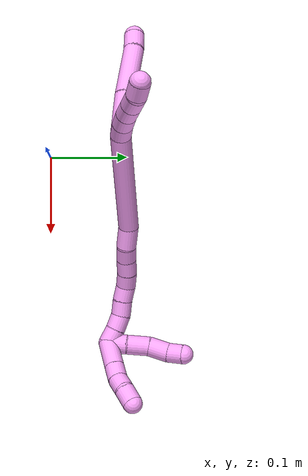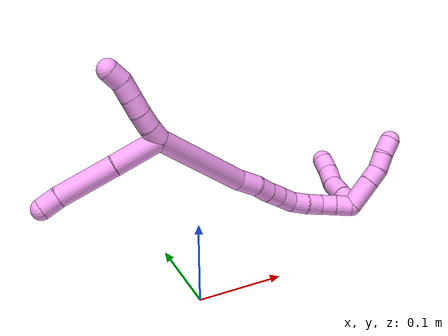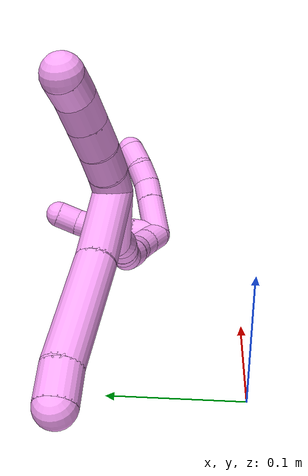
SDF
<sdf version="1.7">
 <world name="default">
  <model name="4">
   <static>0</static>
   <link name="4">
    <collision name="collision-cylinder-e_1_2_8">
     <pose>-0.028395 0.001263 -0.002235 -2.6273 -1.48064 2.58111</pose>
     <geometry><cylinder><radius>0.0125</radius><length>0.057022</length></cylinder></geometry>
     <surface>
      <friction><ode><mu>1.16</mu><mu2>1.16</mu2><slip1>0</slip1><slip2>0</slip2></ode></friction>
      <contact><ode><kp>1e+06</kp><kd>1</kd><max_vel>0</max_vel><min_depth>0.001</min_depth></ode></contact>
     </surface>
    </collision>
    <visual name="visual-cylinder-e_1_2_8">
     <pose>-0.028395 0.001263 -0.002235 -2.6273 -1.48064 2.58111</pose>
     <geometry><cylinder><radius>0.0125</radius><length>0.057022</length></cylinder></geometry>
     <material><ambient>1 0.65098 0.996078 1</ambient></material>
    </visual>
    <collision name="collision-cylinder-e_2_8_9">
     <pose>-0.091507 0.006401 -0.008183 -2.33484 -1.41741 2.21777</pose>
     <geometry><cylinder><radius>0.0125</radius><length>0.070258</length></cylinder></geometry>
     <surface>
      <friction><ode><mu>1.16</mu><mu2>1.16</mu2><slip1>0</slip1><slip2>0</slip2></ode></friction>
      <contact><ode><kp>1e+06</kp><kd>1</kd><max_vel>0</max_vel><min_depth>0.001</min_depth></ode></contact>
     </surface>
    </collision>
    <visual name="visual-cylinder-e_2_8_9">
     <pose>-0.091507 0.006401 -0.008183 -2.33484 -1.41741 2.21777</pose>
     <geometry><cylinder><radius>0.0125</radius><length>0.070258</length></cylinder></geometry>
     <material><ambient>1 0.65098 0.996078 1</ambient></material>
    </visual>
    <collision name="collision-cylinder-e_3_9_6">
     <pose>-0.137427 0.010239 -0.013779 3.12155 -1.40429 -3.11791</pose>
     <geometry><cylinder><radius>0.0125</radius><length>0.02272</length></cylinder></geometry>
     <surface>
      <friction><ode><mu>1.16</mu><mu2>1.16</mu2><slip1>0</slip1><slip2>0</slip2></ode></friction>
      <contact><ode><kp>1e+06</kp><kd>1</kd><max_vel>0</max_vel><min_depth>0.001</min_depth></ode></contact>
     </surface>
    </collision>
    <visual name="visual-cylinder-e_3_9_6">
     <pose>-0.137427 0.010239 -0.013779 3.12155 -1.40429 -3.11791</pose>
     <geometry><cylinder><radius>0.0125</radius><length>0.02272</length></cylinder></geometry>
     <material><ambient>1 0.65098 0.996078 1</ambient></material>
    </visual>
    <collision name="collision-cylinder-e_1_2_10">
     <pose>-0.00223 0.000157 0.009747 -0.016084 -0.224896 0.001816</pose>
     <geometry><cylinder><radius>0.0125</radius><length>0.02</length></cylinder></geometry>
     <surface>
      <friction><ode><mu>1.16</mu><mu2>1.16</mu2><slip1>0</slip1><slip2>0</slip2></ode></friction>
      <contact><ode><kp>1e+06</kp><kd>1</kd><max_vel>0</max_vel><min_depth>0.001</min_depth></ode></contact>
     </surface>
    </collision>
    <visual name="visual-cylinder-e_1_2_10">
     <pose>-0.00223 0.000157 0.009747 -0.016084 -0.224896 0.001816</pose>
     <geometry><cylinder><radius>0.0125</radius><length>0.02</length></cylinder></geometry>
     <material><ambient>1 0.65098 0.996078 1</ambient></material>
    </visual>
    <collision name="collision-cylinder-e_2_10_11">
     <pose>-0.005872 0.00135 0.029339 -0.104907 -0.141695 0.007452</pose>
     <geometry><cylinder><radius>0.0125</radius><length>0.02</length></cylinder></geometry>
     <surface>
      <friction><ode><mu>1.16</mu><mu2>1.16</mu2><slip1>0</slip1><slip2>0</slip2></ode></friction>
      <contact><ode><kp>1e+06</kp><kd>1</kd><max_vel>0</max_vel><min_depth>0.001</min_depth></ode></contact>
     </surface>
    </collision>
    <visual name="visual-cylinder-e_2_10_11">
     <pose>-0.005872 0.00135 0.029339 -0.104907 -0.141695 0.007452</pose>
     <geometry><cylinder><radius>0.0125</radius><length>0.02</length></cylinder></geometry>
     <material><ambient>1 0.65098 0.996078 1</ambient></material>
    </visual>
    <collision name="collision-cylinder-e_3_11_12">
     <pose>-0.008098 0.004113 0.049001 -0.174038 -0.081389 0.007104</pose>
     <geometry><cylinder><radius>0.0125</radius><length>0.02</length></cylinder></geometry>
     <surface>
      <friction><ode><mu>1.16</mu><mu2>1.16</mu2><slip1>0</slip1><slip2>0</slip2></ode></friction>
      <contact><ode><kp>1e+06</kp><kd>1</kd><max_vel>0</max_vel><min_depth>0.001</min_depth></ode></contact>
     </surface>
    </collision>
    <visual name="visual-cylinder-e_3_11_12">
     <pose>-0.008098 0.004113 0.049001 -0.174038 -0.081389 0.007104</pose>
     <geometry><cylinder><radius>0.0125</radius><length>0.02</length></cylinder></geometry>
     <material><ambient>1 0.65098 0.996078 1</ambient></material>
    </visual>
    <collision name="collision-cylinder-e_4_12_13">
     <pose>-0.009709 0.007609 0.068627 -0.178554 -0.079949 0.00716</pose>
     <geometry><cylinder><radius>0.0125</radius><length>0.02</length></cylinder></geometry>
     <surface>
      <friction><ode><mu>1.16</mu><mu2>1.16</mu2><slip1>0</slip1><slip2>0</slip2></ode></friction>
      <contact><ode><kp>1e+06</kp><kd>1</kd><max_vel>0</max_vel><min_depth>0.001</min_depth></ode></contact>
     </surface>
    </collision>
    <visual name="visual-cylinder-e_4_12_13">
     <pose>-0.009709 0.007609 0.068627 -0.178554 -0.079949 0.00716</pose>
     <geometry><cylinder><radius>0.0125</radius><length>0.02</length></cylinder></geometry>
     <material><ambient>1 0.65098 0.996078 1</ambient></material>
    </visual>
    <collision name="collision-cylinder-e_5_13_5">
     <pose>-0.014377 0.010329 0.087608 -0.103206 -0.397273 0.020792</pose>
     <geometry><cylinder><radius>0.0125</radius><length>0.02</length></cylinder></geometry>
     <surface>
      <friction><ode><mu>1.16</mu><mu2>1.16</mu2><slip1>0</slip1><slip2>0</slip2></ode></friction>
      <contact><ode><kp>1e+06</kp><kd>1</kd><max_vel>0</max_vel><min_depth>0.001</min_depth></ode></contact>
     </surface>
    </collision>
    <visual name="visual-cylinder-e_5_13_5">
     <pose>-0.014377 0.010329 0.087608 -0.103206 -0.397273 0.020792</pose>
     <geometry><cylinder><radius>0.0125</radius><length>0.02</length></cylinder></geometry>
     <material><ambient>1 0.65098 0.996078 1</ambient></material>
    </visual>
    <collision name="collision-cylinder-e_1_2_14">
     <pose>0.034204 0.012013 -0.054894 -2.92615 0.546792 -2.40548</pose>
     <geometry><cylinder><radius>0.0125</radius><length>0.131568</length></cylinder></geometry>
     <surface>
      <friction><ode><mu>1.16</mu><mu2>1.16</mu2><slip1>0</slip1><slip2>0</slip2></ode></friction>
      <contact><ode><kp>1e+06</kp><kd>1</kd><max_vel>0</max_vel><min_depth>0.001</min_depth></ode></contact>
     </surface>
    </collision>
    <visual name="visual-cylinder-e_1_2_14">
     <pose>0.034204 0.012013 -0.054894 -2.92615 0.546792 -2.40548</pose>
     <geometry><cylinder><radius>0.0125</radius><length>0.131568</length></cylinder></geometry>
     <material><ambient>1 0.65098 0.996078 1</ambient></material>
    </visual>
    <collision name="collision-cylinder-e_2_14_15">
     <pose>0.077721 0.024134 -0.120109 -3.13108 0.733954 -3.11424</pose>
     <geometry><cylinder><radius>0.0125</radius><length>0.027804</length></cylinder></geometry>
     <surface>
      <friction><ode><mu>1.16</mu><mu2>1.16</mu2><slip1>0</slip1><slip2>0</slip2></ode></friction>
      <contact><ode><kp>1e+06</kp><kd>1</kd><max_vel>0</max_vel><min_depth>0.001</min_depth></ode></contact>
     </surface>
    </collision>
    <visual name="visual-cylinder-e_2_14_15">
     <pose>0.077721 0.024134 -0.120109 -3.13108 0.733954 -3.11424</pose>
     <geometry><cylinder><radius>0.0125</radius><length>0.027804</length></cylinder></geometry>
     <material><ambient>1 0.65098 0.996078 1</ambient></material>
    </visual>
    <collision name="collision-cylinder-e_3_15_16">
     <pose>0.092242 0.025347 -0.139001 -3.01342 0.542571 -2.6881</pose>
     <geometry><cylinder><radius>0.0125</radius><length>0.020179</length></cylinder></geometry>
     <surface>
      <friction><ode><mu>1.16</mu><mu2>1.16</mu2><slip1>0</slip1><slip2>0</slip2></ode></friction>
      <contact><ode><kp>1e+06</kp><kd>1</kd><max_vel>0</max_vel><min_depth>0.001</min_depth></ode></contact>
     </surface>
    </collision>
    <visual name="visual-cylinder-e_3_15_16">
     <pose>0.092242 0.025347 -0.139001 -3.01342 0.542571 -2.6881</pose>
     <geometry><cylinder><radius>0.0125</radius><length>0.020179</length></cylinder></geometry>
     <material><ambient>1 0.65098 0.996078 1</ambient></material>
    </visual>
    <collision name="collision-cylinder-e_4_16_17">
     <pose>0.103465 0.028104 -0.155661 -2.94006 0.629476 -2.53933</pose>
     <geometry><cylinder><radius>0.0125</radius><length>0.02043</length></cylinder></geometry>
     <surface>
      <friction><ode><mu>1.16</mu><mu2>1.16</mu2><slip1>0</slip1><slip2>0</slip2></ode></friction>
      <contact><ode><kp>1e+06</kp><kd>1</kd><max_vel>0</max_vel><min_depth>0.001</min_depth></ode></contact>
     </surface>
    </collision>
    <visual name="visual-cylinder-e_4_16_17">
     <pose>0.103465 0.028104 -0.155661 -2.94006 0.629476 -2.53933</pose>
     <geometry><cylinder><radius>0.0125</radius><length>0.02043</length></cylinder></geometry>
     <material><ambient>1 0.65098 0.996078 1</ambient></material>
    </visual>
    <collision name="collision-cylinder-e_5_17_18">
     <pose>0.115404 0.030132 -0.171801 -3.09501 0.633923 -2.9998</pose>
     <geometry><cylinder><radius>0.0125</radius><length>0.020005</length></cylinder></geometry>
     <surface>
      <friction><ode><mu>1.16</mu><mu2>1.16</mu2><slip1>0</slip1><slip2>0</slip2></ode></friction>
      <contact><ode><kp>1e+06</kp><kd>1</kd><max_vel>0</max_vel><min_depth>0.001</min_depth></ode></contact>
     </surface>
    </collision>
    <visual name="visual-cylinder-e_5_17_18">
     <pose>0.115404 0.030132 -0.171801 -3.09501 0.633923 -2.9998</pose>
     <geometry><cylinder><radius>0.0125</radius><length>0.020005</length></cylinder></geometry>
     <material><ambient>1 0.65098 0.996078 1</ambient></material>
    </visual>
    <collision name="collision-cylinder-e_6_18_19">
     <pose>0.129311 0.029335 -0.185765 2.94594 0.923994 2.7524</pose>
     <geometry><cylinder><radius>0.0125</radius><length>0.020007</length></cylinder></geometry>
     <surface>
      <friction><ode><mu>1.16</mu><mu2>1.16</mu2><slip1>0</slip1><slip2>0</slip2></ode></friction>
      <contact><ode><kp>1e+06</kp><kd>1</kd><max_vel>0</max_vel><min_depth>0.001</min_depth></ode></contact>
     </surface>
    </collision>
    <visual name="visual-cylinder-e_6_18_19">
     <pose>0.129311 0.029335 -0.185765 2.94594 0.923994 2.7524</pose>
     <geometry><cylinder><radius>0.0125</radius><length>0.020007</length></cylinder></geometry>
     <material><ambient>1 0.65098 0.996078 1</ambient></material>
    </visual>
    <collision name="collision-cylinder-e_7_19_20">
     <pose>0.145588 0.028122 -0.197266 3.13411 0.977907 3.12753</pose>
     <geometry><cylinder><radius>0.0125</radius><length>0.020001</length></cylinder></geometry>
     <surface>
      <friction><ode><mu>1.16</mu><mu2>1.16</mu2><slip1>0</slip1><slip2>0</slip2></ode></friction>
      <contact><ode><kp>1e+06</kp><kd>1</kd><max_vel>0</max_vel><min_depth>0.001</min_depth></ode></contact>
     </surface>
    </collision>
    <visual name="visual-cylinder-e_7_19_20">
     <pose>0.145588 0.028122 -0.197266 3.13411 0.977907 3.12753</pose>
     <geometry><cylinder><radius>0.0125</radius><length>0.020001</length></cylinder></geometry>
     <material><ambient>1 0.65098 0.996078 1</ambient></material>
    </visual>
    <collision name="collision-cylinder-e_8_20_21">
     <pose>0.162568 0.025385 -0.20701 2.56627 1.05255 2.19947</pose>
     <geometry><cylinder><radius>0.0125</radius><length>0.02</length></cylinder></geometry>
     <surface>
      <friction><ode><mu>1.16</mu><mu2>1.16</mu2><slip1>0</slip1><slip2>0</slip2></ode></friction>
      <contact><ode><kp>1e+06</kp><kd>1</kd><max_vel>0</max_vel><min_depth>0.001</min_depth></ode></contact>
     </surface>
    </collision>
    <visual name="visual-cylinder-e_8_20_21">
     <pose>0.162568 0.025385 -0.20701 2.56627 1.05255 2.19947</pose>
     <geometry><cylinder><radius>0.0125</radius><length>0.02</length></cylinder></geometry>
     <material><ambient>1 0.65098 0.996078 1</ambient></material>
    </visual>
    <collision name="collision-cylinder-e_9_21_1">
     <pose>0.179784 0.018811 -0.214671 2.30554 1.02093 1.80034</pose>
     <geometry><cylinder><radius>0.0125</radius><length>0.020005</length></cylinder></geometry>
     <surface>
      <friction><ode><mu>1.16</mu><mu2>1.16</mu2><slip1>0</slip1><slip2>0</slip2></ode></friction>
      <contact><ode><kp>1e+06</kp><kd>1</kd><max_vel>0</max_vel><min_depth>0.001</min_depth></ode></contact>
     </surface>
    </collision>
    <visual name="visual-cylinder-e_9_21_1">
     <pose>0.179784 0.018811 -0.214671 2.30554 1.02093 1.80034</pose>
     <geometry><cylinder><radius>0.0125</radius><length>0.020005</length></cylinder></geometry>
     <material><ambient>1 0.65098 0.996078 1</ambient></material>
    </visual>
    <collision name="collision-cylinder-e_1_1_22">
     <pose>0.188923 0.026792 -0.216538 -1.43368 0.050994 -0.044444</pose>
     <geometry><cylinder><radius>0.0125</radius><length>0.023975</length></cylinder></geometry>
     <surface>
      <friction><ode><mu>1.16</mu><mu2>1.16</mu2><slip1>0</slip1><slip2>0</slip2></ode></friction>
      <contact><ode><kp>1e+06</kp><kd>1</kd><max_vel>0</max_vel><min_depth>0.001</min_depth></ode></contact>
     </surface>
    </collision>
    <visual name="visual-cylinder-e_1_1_22">
     <pose>0.188923 0.026792 -0.216538 -1.43368 0.050994 -0.044444</pose>
     <geometry><cylinder><radius>0.0125</radius><length>0.023975</length></cylinder></geometry>
     <material><ambient>1 0.65098 0.996078 1</ambient></material>
    </visual>
    <collision name="collision-cylinder-e_2_22_23">
     <pose>0.189679 0.05309 -0.2143 -1.52912 0.010046 -0.009636</pose>
     <geometry><cylinder><radius>0.0125</radius><length>0.028905</length></cylinder></geometry>
     <surface>
      <friction><ode><mu>1.16</mu><mu2>1.16</mu2><slip1>0</slip1><slip2>0</slip2></ode></friction>
      <contact><ode><kp>1e+06</kp><kd>1</kd><max_vel>0</max_vel><min_depth>0.001</min_depth></ode></contact>
     </surface>
    </collision>
    <visual name="visual-cylinder-e_2_22_23">
     <pose>0.189679 0.05309 -0.2143 -1.52912 0.010046 -0.009636</pose>
     <geometry><cylinder><radius>0.0125</radius><length>0.028905</length></cylinder></geometry>
     <material><ambient>1 0.65098 0.996078 1</ambient></material>
    </visual>
    <collision name="collision-cylinder-e_3_23_24">
     <pose>0.19357 0.080254 -0.211863 -1.42758 0.283492 -0.245954</pose>
     <geometry><cylinder><radius>0.0125</radius><length>0.026782</length></cylinder></geometry>
     <surface>
      <friction><ode><mu>1.16</mu><mu2>1.16</mu2><slip1>0</slip1><slip2>0</slip2></ode></friction>
      <contact><ode><kp>1e+06</kp><kd>1</kd><max_vel>0</max_vel><min_depth>0.001</min_depth></ode></contact>
     </surface>
    </collision>
    <visual name="visual-cylinder-e_3_23_24">
     <pose>0.19357 0.080254 -0.211863 -1.42758 0.283492 -0.245954</pose>
     <geometry><cylinder><radius>0.0125</radius><length>0.026782</length></cylinder></geometry>
     <material><ambient>1 0.65098 0.996078 1</ambient></material>
    </visual>
    <collision name="collision-cylinder-e_4_24_4">
     <pose>0.198765 0.10221 -0.206015 -1.16077 0.14305 -0.093892</pose>
     <geometry><cylinder><radius>0.0125</radius><length>0.020338</length></cylinder></geometry>
     <surface>
      <friction><ode><mu>1.16</mu><mu2>1.16</mu2><slip1>0</slip1><slip2>0</slip2></ode></friction>
      <contact><ode><kp>1e+06</kp><kd>1</kd><max_vel>0</max_vel><min_depth>0.001</min_depth></ode></contact>
     </surface>
    </collision>
    <visual name="visual-cylinder-e_4_24_4">
     <pose>0.198765 0.10221 -0.206015 -1.16077 0.14305 -0.093892</pose>
     <geometry><cylinder><radius>0.0125</radius><length>0.020338</length></cylinder></geometry>
     <material><ambient>1 0.65098 0.996078 1</ambient></material>
    </visual>
    <collision name="collision-cylinder-e_1_1_25">
     <pose>0.205523 0.019411 -0.211714 -0.606161 1.14232 -0.396621</pose>
     <geometry><cylinder><radius>0.0125</radius><length>0.037844</length></cylinder></geometry>
     <surface>
      <friction><ode><mu>1.16</mu><mu2>1.16</mu2><slip1>0</slip1><slip2>0</slip2></ode></friction>
      <contact><ode><kp>1e+06</kp><kd>1</kd><max_vel>0</max_vel><min_depth>0.001</min_depth></ode></contact>
     </surface>
    </collision>
    <visual name="visual-cylinder-e_1_1_25">
     <pose>0.205523 0.019411 -0.211714 -0.606161 1.14232 -0.396621</pose>
     <geometry><cylinder><radius>0.0125</radius><length>0.037844</length></cylinder></geometry>
     <material><ambient>1 0.65098 0.996078 1</ambient></material>
    </visual>
    <collision name="collision-cylinder-e_2_25_26">
     <pose>0.23181 0.026316 -0.201808 -0.613697 1.13616 -0.399092</pose>
     <geometry><cylinder><radius>0.0125</radius><length>0.020011</length></cylinder></geometry>
     <surface>
      <friction><ode><mu>1.16</mu><mu2>1.16</mu2><slip1>0</slip1><slip2>0</slip2></ode></friction>
      <contact><ode><kp>1e+06</kp><kd>1</kd><max_vel>0</max_vel><min_depth>0.001</min_depth></ode></contact>
     </surface>
    </collision>
    <visual name="visual-cylinder-e_2_25_26">
     <pose>0.23181 0.026316 -0.201808 -0.613697 1.13616 -0.399092</pose>
     <geometry><cylinder><radius>0.0125</radius><length>0.020011</length></cylinder></geometry>
     <material><ambient>1 0.65098 0.996078 1</ambient></material>
    </visual>
    <collision name="collision-cylinder-e_3_26_27">
     <pose>0.248463 0.032778 -0.192886 -0.634921 0.839176 -0.291067</pose>
     <geometry><cylinder><radius>0.0125</radius><length>0.020369</length></cylinder></geometry>
     <surface>
      <friction><ode><mu>1.16</mu><mu2>1.16</mu2><slip1>0</slip1><slip2>0</slip2></ode></friction>
      <contact><ode><kp>1e+06</kp><kd>1</kd><max_vel>0</max_vel><min_depth>0.001</min_depth></ode></contact>
     </surface>
    </collision>
    <visual name="visual-cylinder-e_3_26_27">
     <pose>0.248463 0.032778 -0.192886 -0.634921 0.839176 -0.291067</pose>
     <geometry><cylinder><radius>0.0125</radius><length>0.020369</length></cylinder></geometry>
     <material><ambient>1 0.65098 0.996078 1</ambient></material>
    </visual>
    <collision name="collision-cylinder-e_4_27_3">
     <pose>0.26497 0.041916 -0.183829 -0.959101 0.961415 -0.529672</pose>
     <geometry><cylinder><radius>0.0125</radius><length>0.021776</length></cylinder></geometry>
     <surface>
      <friction><ode><mu>1.16</mu><mu2>1.16</mu2><slip1>0</slip1><slip2>0</slip2></ode></friction>
      <contact><ode><kp>1e+06</kp><kd>1</kd><max_vel>0</max_vel><min_depth>0.001</min_depth></ode></contact>
     </surface>
    </collision>
    <visual name="visual-cylinder-e_4_27_3">
     <pose>0.26497 0.041916 -0.183829 -0.959101 0.961415 -0.529672</pose>
     <geometry><cylinder><radius>0.0125</radius><length>0.021776</length></cylinder></geometry>
     <material><ambient>1 0.65098 0.996078 1</ambient></material>
    </visual>
    <collision name="collision-sphere-3">
     <pose>0.273898 0.047018 -0.18025 0 -0 0</pose>
     <geometry><sphere><radius>0.0125</radius></sphere></geometry>
     <surface>
      <friction><ode><mu>1.16</mu><mu2>1.16</mu2><slip1>0</slip1><slip2>0</slip2></ode></friction>
      <contact><ode><kp>1e+06</kp><kd>1</kd><max_vel>0</max_vel><min_depth>0.001</min_depth></ode></contact>
     </surface>
    </collision>
    <visual name="visual-sphere-3">
     <pose>0.273898 0.047018 -0.18025 0 -0 0</pose>
     <geometry><sphere><radius>0.0125</radius></sphere></geometry>
     <material><ambient>1 0.65098 0.996078 1</ambient></material>
    </visual>
    <collision name="collision-sphere-27">
     <pose>0.256041 0.036814 -0.187408 0 -0 0</pose>
     <geometry><sphere><radius>0.0125</radius></sphere></geometry>
     <surface>
      <friction><ode><mu>1.16</mu><mu2>1.16</mu2><slip1>0</slip1><slip2>0</slip2></ode></friction>
      <contact><ode><kp>1e+06</kp><kd>1</kd><max_vel>0</max_vel><min_depth>0.001</min_depth></ode></contact>
     </surface>
    </collision>
    <visual name="visual-sphere-27">
     <pose>0.256041 0.036814 -0.187408 0 -0 0</pose>
     <geometry><sphere><radius>0.0125</radius></sphere></geometry>
     <material><ambient>1 0.65098 0.996078 1</ambient></material>
    </visual>
    <collision name="collision-sphere-26">
     <pose>0.240885 0.028743 -0.198364 0 -0 0</pose>
     <geometry><sphere><radius>0.0125</radius></sphere></geometry>
     <surface>
      <friction><ode><mu>1.16</mu><mu2>1.16</mu2><slip1>0</slip1><slip2>0</slip2></ode></friction>
      <contact><ode><kp>1e+06</kp><kd>1</kd><max_vel>0</max_vel><min_depth>0.001</min_depth></ode></contact>
     </surface>
    </collision>
    <visual name="visual-sphere-26">
     <pose>0.240885 0.028743 -0.198364 0 -0 0</pose>
     <geometry><sphere><radius>0.0125</radius></sphere></geometry>
     <material><ambient>1 0.65098 0.996078 1</ambient></material>
    </visual>
    <collision name="collision-sphere-25">
     <pose>0.222735 0.02389 -0.205253 0 -0 0</pose>
     <geometry><sphere><radius>0.0125</radius></sphere></geometry>
     <surface>
      <friction><ode><mu>1.16</mu><mu2>1.16</mu2><slip1>0</slip1><slip2>0</slip2></ode></friction>
      <contact><ode><kp>1e+06</kp><kd>1</kd><max_vel>0</max_vel><min_depth>0.001</min_depth></ode></contact>
     </surface>
    </collision>
    <visual name="visual-sphere-25">
     <pose>0.222735 0.02389 -0.205253 0 -0 0</pose>
     <geometry><sphere><radius>0.0125</radius></sphere></geometry>
     <material><ambient>1 0.65098 0.996078 1</ambient></material>
    </visual>
    <collision name="collision-sphere-4">
     <pose>0.200215 0.111441 -0.202003 0 -0 0</pose>
     <geometry><sphere><radius>0.0125</radius></sphere></geometry>
     <surface>
      <friction><ode><mu>1.16</mu><mu2>1.16</mu2><slip1>0</slip1><slip2>0</slip2></ode></friction>
      <contact><ode><kp>1e+06</kp><kd>1</kd><max_vel>0</max_vel><min_depth>0.001</min_depth></ode></contact>
     </surface>
    </collision>
    <visual name="visual-sphere-4">
     <pose>0.200215 0.111441 -0.202003 0 -0 0</pose>
     <geometry><sphere><radius>0.0125</radius></sphere></geometry>
     <material><ambient>1 0.65098 0.996078 1</ambient></material>
    </visual>
    <collision name="collision-sphere-24">
     <pose>0.197316 0.092979 -0.210028 0 -0 0</pose>
     <geometry><sphere><radius>0.0125</radius></sphere></geometry>
     <surface>
      <friction><ode><mu>1.16</mu><mu2>1.16</mu2><slip1>0</slip1><slip2>0</slip2></ode></friction>
      <contact><ode><kp>1e+06</kp><kd>1</kd><max_vel>0</max_vel><min_depth>0.001</min_depth></ode></contact>
     </surface>
    </collision>
    <visual name="visual-sphere-24">
     <pose>0.197316 0.092979 -0.210028 0 -0 0</pose>
     <geometry><sphere><radius>0.0125</radius></sphere></geometry>
     <material><ambient>1 0.65098 0.996078 1</ambient></material>
    </visual>
    <collision name="collision-sphere-23">
     <pose>0.189824 0.067529 -0.213698 0 -0 0</pose>
     <geometry><sphere><radius>0.0125</radius></sphere></geometry>
     <surface>
      <friction><ode><mu>1.16</mu><mu2>1.16</mu2><slip1>0</slip1><slip2>0</slip2></ode></friction>
      <contact><ode><kp>1e+06</kp><kd>1</kd><max_vel>0</max_vel><min_depth>0.001</min_depth></ode></contact>
     </surface>
    </collision>
    <visual name="visual-sphere-23">
     <pose>0.189824 0.067529 -0.213698 0 -0 0</pose>
     <geometry><sphere><radius>0.0125</radius></sphere></geometry>
     <material><ambient>1 0.65098 0.996078 1</ambient></material>
    </visual>
    <collision name="collision-sphere-22">
     <pose>0.189534 0.038651 -0.214902 0 -0 0</pose>
     <geometry><sphere><radius>0.0125</radius></sphere></geometry>
     <surface>
      <friction><ode><mu>1.16</mu><mu2>1.16</mu2><slip1>0</slip1><slip2>0</slip2></ode></friction>
      <contact><ode><kp>1e+06</kp><kd>1</kd><max_vel>0</max_vel><min_depth>0.001</min_depth></ode></contact>
     </surface>
    </collision>
    <visual name="visual-sphere-22">
     <pose>0.189534 0.038651 -0.214902 0 -0 0</pose>
     <geometry><sphere><radius>0.0125</radius></sphere></geometry>
     <material><ambient>1 0.65098 0.996078 1</ambient></material>
    </visual>
    <collision name="collision-sphere-1">
     <pose>0.188312 0.014932 -0.218175 0 -0 0</pose>
     <geometry><sphere><radius>0.0125</radius></sphere></geometry>
     <surface>
      <friction><ode><mu>1.16</mu><mu2>1.16</mu2><slip1>0</slip1><slip2>0</slip2></ode></friction>
      <contact><ode><kp>1e+06</kp><kd>1</kd><max_vel>0</max_vel><min_depth>0.001</min_depth></ode></contact>
     </surface>
    </collision>
    <visual name="visual-sphere-1">
     <pose>0.188312 0.014932 -0.218175 0 -0 0</pose>
     <geometry><sphere><radius>0.0125</radius></sphere></geometry>
     <material><ambient>1 0.65098 0.996078 1</ambient></material>
    </visual>
    <collision name="collision-sphere-21">
     <pose>0.171256 0.022689 -0.211166 0 -0 0</pose>
     <geometry><sphere><radius>0.0125</radius></sphere></geometry>
     <surface>
      <friction><ode><mu>1.16</mu><mu2>1.16</mu2><slip1>0</slip1><slip2>0</slip2></ode></friction>
      <contact><ode><kp>1e+06</kp><kd>1</kd><max_vel>0</max_vel><min_depth>0.001</min_depth></ode></contact>
     </surface>
    </collision>
    <visual name="visual-sphere-21">
     <pose>0.171256 0.022689 -0.211166 0 -0 0</pose>
     <geometry><sphere><radius>0.0125</radius></sphere></geometry>
     <material><ambient>1 0.65098 0.996078 1</ambient></material>
    </visual>
    <collision name="collision-sphere-11">
     <pose>-0.007285 0.002387 0.039185 0 -0 0</pose>
     <geometry><sphere><radius>0.0125</radius></sphere></geometry>
     <surface>
      <friction><ode><mu>1.16</mu><mu2>1.16</mu2><slip1>0</slip1><slip2>0</slip2></ode></friction>
      <contact><ode><kp>1e+06</kp><kd>1</kd><max_vel>0</max_vel><min_depth>0.001</min_depth></ode></contact>
     </surface>
    </collision>
    <visual name="visual-sphere-11">
     <pose>-0.007285 0.002387 0.039185 0 -0 0</pose>
     <geometry><sphere><radius>0.0125</radius></sphere></geometry>
     <material><ambient>1 0.65098 0.996078 1</ambient></material>
    </visual>
    <collision name="collision-sphere-10">
     <pose>-0.00446 0.000314 0.019494 0 -0 0</pose>
     <geometry><sphere><radius>0.0125</radius></sphere></geometry>
     <surface>
      <friction><ode><mu>1.16</mu><mu2>1.16</mu2><slip1>0</slip1><slip2>0</slip2></ode></friction>
      <contact><ode><kp>1e+06</kp><kd>1</kd><max_vel>0</max_vel><min_depth>0.001</min_depth></ode></contact>
     </surface>
    </collision>
    <visual name="visual-sphere-10">
     <pose>-0.00446 0.000314 0.019494 0 -0 0</pose>
     <geometry><sphere><radius>0.0125</radius></sphere></geometry>
     <material><ambient>1 0.65098 0.996078 1</ambient></material>
    </visual>
    <collision name="collision-sphere-6">
     <pose>-0.148629 0.010201 -0.015661 0 -0 0</pose>
     <geometry><sphere><radius>0.0125</radius></sphere></geometry>
     <surface>
      <friction><ode><mu>1.16</mu><mu2>1.16</mu2><slip1>0</slip1><slip2>0</slip2></ode></friction>
      <contact><ode><kp>1e+06</kp><kd>1</kd><max_vel>0</max_vel><min_depth>0.001</min_depth></ode></contact>
     </surface>
    </collision>
    <visual name="visual-sphere-6">
     <pose>-0.148629 0.010201 -0.015661 0 -0 0</pose>
     <geometry><sphere><radius>0.0125</radius></sphere></geometry>
     <material><ambient>1 0.65098 0.996078 1</ambient></material>
    </visual>
    <collision name="collision-sphere-9">
     <pose>-0.126224 0.010276 -0.011896 0 -0 0</pose>
     <geometry><sphere><radius>0.0125</radius></sphere></geometry>
     <surface>
      <friction><ode><mu>1.16</mu><mu2>1.16</mu2><slip1>0</slip1><slip2>0</slip2></ode></friction>
      <contact><ode><kp>1e+06</kp><kd>1</kd><max_vel>0</max_vel><min_depth>0.001</min_depth></ode></contact>
     </surface>
    </collision>
    <visual name="visual-sphere-9">
     <pose>-0.126224 0.010276 -0.011896 0 -0 0</pose>
     <geometry><sphere><radius>0.0125</radius></sphere></geometry>
     <material><ambient>1 0.65098 0.996078 1</ambient></material>
    </visual>
    <collision name="collision-sphere-2">
     <geometry><sphere><radius>0.0125</radius></sphere></geometry>
     <surface>
      <friction><ode><mu>1.16</mu><mu2>1.16</mu2><slip1>0</slip1><slip2>0</slip2></ode></friction>
      <contact><ode><kp>1e+06</kp><kd>1</kd><max_vel>0</max_vel><min_depth>0.001</min_depth></ode></contact>
     </surface>
    </collision>
    <visual name="visual-sphere-2">
     <geometry><sphere><radius>0.0125</radius></sphere></geometry>
     <material><ambient>1 0.65098 0.996078 1</ambient></material>
    </visual>
    <collision name="collision-sphere-19">
     <pose>0.137294 0.028164 -0.191678 0 -0 0</pose>
     <geometry><sphere><radius>0.0125</radius></sphere></geometry>
     <surface>
      <friction><ode><mu>1.16</mu><mu2>1.16</mu2><slip1>0</slip1><slip2>0</slip2></ode></friction>
      <contact><ode><kp>1e+06</kp><kd>1</kd><max_vel>0</max_vel><min_depth>0.001</min_depth></ode></contact>
     </surface>
    </collision>
    <visual name="visual-sphere-19">
     <pose>0.137294 0.028164 -0.191678 0 -0 0</pose>
     <geometry><sphere><radius>0.0125</radius></sphere></geometry>
     <material><ambient>1 0.65098 0.996078 1</ambient></material>
    </visual>
    <collision name="collision-sphere-8">
     <pose>-0.05679 0.002526 -0.00447 0 -0 0</pose>
     <geometry><sphere><radius>0.0125</radius></sphere></geometry>
     <surface>
      <friction><ode><mu>1.16</mu><mu2>1.16</mu2><slip1>0</slip1><slip2>0</slip2></ode></friction>
      <contact><ode><kp>1e+06</kp><kd>1</kd><max_vel>0</max_vel><min_depth>0.001</min_depth></ode></contact>
     </surface>
    </collision>
    <visual name="visual-sphere-8">
     <pose>-0.05679 0.002526 -0.00447 0 -0 0</pose>
     <geometry><sphere><radius>0.0125</radius></sphere></geometry>
     <material><ambient>1 0.65098 0.996078 1</ambient></material>
    </visual>
    <collision name="collision-sphere-12">
     <pose>-0.008911 0.005839 0.058817 0 -0 0</pose>
     <geometry><sphere><radius>0.0125</radius></sphere></geometry>
     <surface>
      <friction><ode><mu>1.16</mu><mu2>1.16</mu2><slip1>0</slip1><slip2>0</slip2></ode></friction>
      <contact><ode><kp>1e+06</kp><kd>1</kd><max_vel>0</max_vel><min_depth>0.001</min_depth></ode></contact>
     </surface>
    </collision>
    <visual name="visual-sphere-12">
     <pose>-0.008911 0.005839 0.058817 0 -0 0</pose>
     <geometry><sphere><radius>0.0125</radius></sphere></geometry>
     <material><ambient>1 0.65098 0.996078 1</ambient></material>
    </visual>
    <collision name="collision-sphere-13">
     <pose>-0.010508 0.009379 0.078436 0 -0 0</pose>
     <geometry><sphere><radius>0.0125</radius></sphere></geometry>
     <surface>
      <friction><ode><mu>1.16</mu><mu2>1.16</mu2><slip1>0</slip1><slip2>0</slip2></ode></friction>
      <contact><ode><kp>1e+06</kp><kd>1</kd><max_vel>0</max_vel><min_depth>0.001</min_depth></ode></contact>
     </surface>
    </collision>
    <visual name="visual-sphere-13">
     <pose>-0.010508 0.009379 0.078436 0 -0 0</pose>
     <geometry><sphere><radius>0.0125</radius></sphere></geometry>
     <material><ambient>1 0.65098 0.996078 1</ambient></material>
    </visual>
    <collision name="collision-sphere-5">
     <pose>-0.018246 0.011279 0.096781 0 -0 0</pose>
     <geometry><sphere><radius>0.0125</radius></sphere></geometry>
     <surface>
      <friction><ode><mu>1.16</mu><mu2>1.16</mu2><slip1>0</slip1><slip2>0</slip2></ode></friction>
      <contact><ode><kp>1e+06</kp><kd>1</kd><max_vel>0</max_vel><min_depth>0.001</min_depth></ode></contact>
     </surface>
    </collision>
    <visual name="visual-sphere-5">
     <pose>-0.018246 0.011279 0.096781 0 -0 0</pose>
     <geometry><sphere><radius>0.0125</radius></sphere></geometry>
     <material><ambient>1 0.65098 0.996078 1</ambient></material>
    </visual>
    <collision name="collision-sphere-14">
     <pose>0.068409 0.024025 -0.109787 0 -0 0</pose>
     <geometry><sphere><radius>0.0125</radius></sphere></geometry>
     <surface>
      <friction><ode><mu>1.16</mu><mu2>1.16</mu2><slip1>0</slip1><slip2>0</slip2></ode></friction>
      <contact><ode><kp>1e+06</kp><kd>1</kd><max_vel>0</max_vel><min_depth>0.001</min_depth></ode></contact>
     </surface>
    </collision>
    <visual name="visual-sphere-14">
     <pose>0.068409 0.024025 -0.109787 0 -0 0</pose>
     <geometry><sphere><radius>0.0125</radius></sphere></geometry>
     <material><ambient>1 0.65098 0.996078 1</ambient></material>
    </visual>
    <collision name="collision-sphere-15">
     <pose>0.087032 0.024242 -0.130431 0 -0 0</pose>
     <geometry><sphere><radius>0.0125</radius></sphere></geometry>
     <surface>
      <friction><ode><mu>1.16</mu><mu2>1.16</mu2><slip1>0</slip1><slip2>0</slip2></ode></friction>
      <contact><ode><kp>1e+06</kp><kd>1</kd><max_vel>0</max_vel><min_depth>0.001</min_depth></ode></contact>
     </surface>
    </collision>
    <visual name="visual-sphere-15">
     <pose>0.087032 0.024242 -0.130431 0 -0 0</pose>
     <geometry><sphere><radius>0.0125</radius></sphere></geometry>
     <material><ambient>1 0.65098 0.996078 1</ambient></material>
    </visual>
    <collision name="collision-sphere-16">
     <pose>0.097452 0.026451 -0.147571 0 -0 0</pose>
     <geometry><sphere><radius>0.0125</radius></sphere></geometry>
     <surface>
      <friction><ode><mu>1.16</mu><mu2>1.16</mu2><slip1>0</slip1><slip2>0</slip2></ode></friction>
      <contact><ode><kp>1e+06</kp><kd>1</kd><max_vel>0</max_vel><min_depth>0.001</min_depth></ode></contact>
     </surface>
    </collision>
    <visual name="visual-sphere-16">
     <pose>0.097452 0.026451 -0.147571 0 -0 0</pose>
     <geometry><sphere><radius>0.0125</radius></sphere></geometry>
     <material><ambient>1 0.65098 0.996078 1</ambient></material>
    </visual>
    <collision name="collision-sphere-17">
     <pose>0.109479 0.029757 -0.163751 0 -0 0</pose>
     <geometry><sphere><radius>0.0125</radius></sphere></geometry>
     <surface>
      <friction><ode><mu>1.16</mu><mu2>1.16</mu2><slip1>0</slip1><slip2>0</slip2></ode></friction>
      <contact><ode><kp>1e+06</kp><kd>1</kd><max_vel>0</max_vel><min_depth>0.001</min_depth></ode></contact>
     </surface>
    </collision>
    <visual name="visual-sphere-17">
     <pose>0.109479 0.029757 -0.163751 0 -0 0</pose>
     <geometry><sphere><radius>0.0125</radius></sphere></geometry>
     <material><ambient>1 0.65098 0.996078 1</ambient></material>
    </visual>
    <collision name="collision-sphere-18">
     <pose>0.121328 0.030507 -0.179852 0 -0 0</pose>
     <geometry><sphere><radius>0.0125</radius></sphere></geometry>
     <surface>
      <friction><ode><mu>1.16</mu><mu2>1.16</mu2><slip1>0</slip1><slip2>0</slip2></ode></friction>
      <contact><ode><kp>1e+06</kp><kd>1</kd><max_vel>0</max_vel><min_depth>0.001</min_depth></ode></contact>
     </surface>
    </collision>
    <visual name="visual-sphere-18">
     <pose>0.121328 0.030507 -0.179852 0 -0 0</pose>
     <geometry><sphere><radius>0.0125</radius></sphere></geometry>
     <material><ambient>1 0.65098 0.996078 1</ambient></material>
    </visual>
    <collision name="collision-sphere-20">
     <pose>0.153881 0.02808 -0.202854 0 -0 0</pose>
     <geometry><sphere><radius>0.0125</radius></sphere></geometry>
     <surface>
      <friction><ode><mu>1.16</mu><mu2>1.16</mu2><slip1>0</slip1><slip2>0</slip2></ode></friction>
      <contact><ode><kp>1e+06</kp><kd>1</kd><max_vel>0</max_vel><min_depth>0.001</min_depth></ode></contact>
     </surface>
    </collision>
    <visual name="visual-sphere-20">
     <pose>0.153881 0.02808 -0.202854 0 -0 0</pose>
     <geometry><sphere><radius>0.0125</radius></sphere></geometry>
     <material><ambient>1 0.65098 0.996078 1</ambient></material>
    </visual>
    <inertial>
     <pose>0.074403 0.021927 -0.097923 0 -0 0</pose>
     <mass>0.75</mass>
     <inertia>
      <ixx>-0.000215</ixx>
      <ixy>0</ixy>
      <ixz>0</ixz>
      <iyy>0.00014</iyy>
      <iyz>0</iyz>
      <izz>-0.000128</izz>
     </inertia>
    </inertial>
   </link>
   <pose>-0.004644 0.092117 0.158992 -0.075654 -0.325107 -0.062244</pose>
  </model>
 </world>
</sdf>
